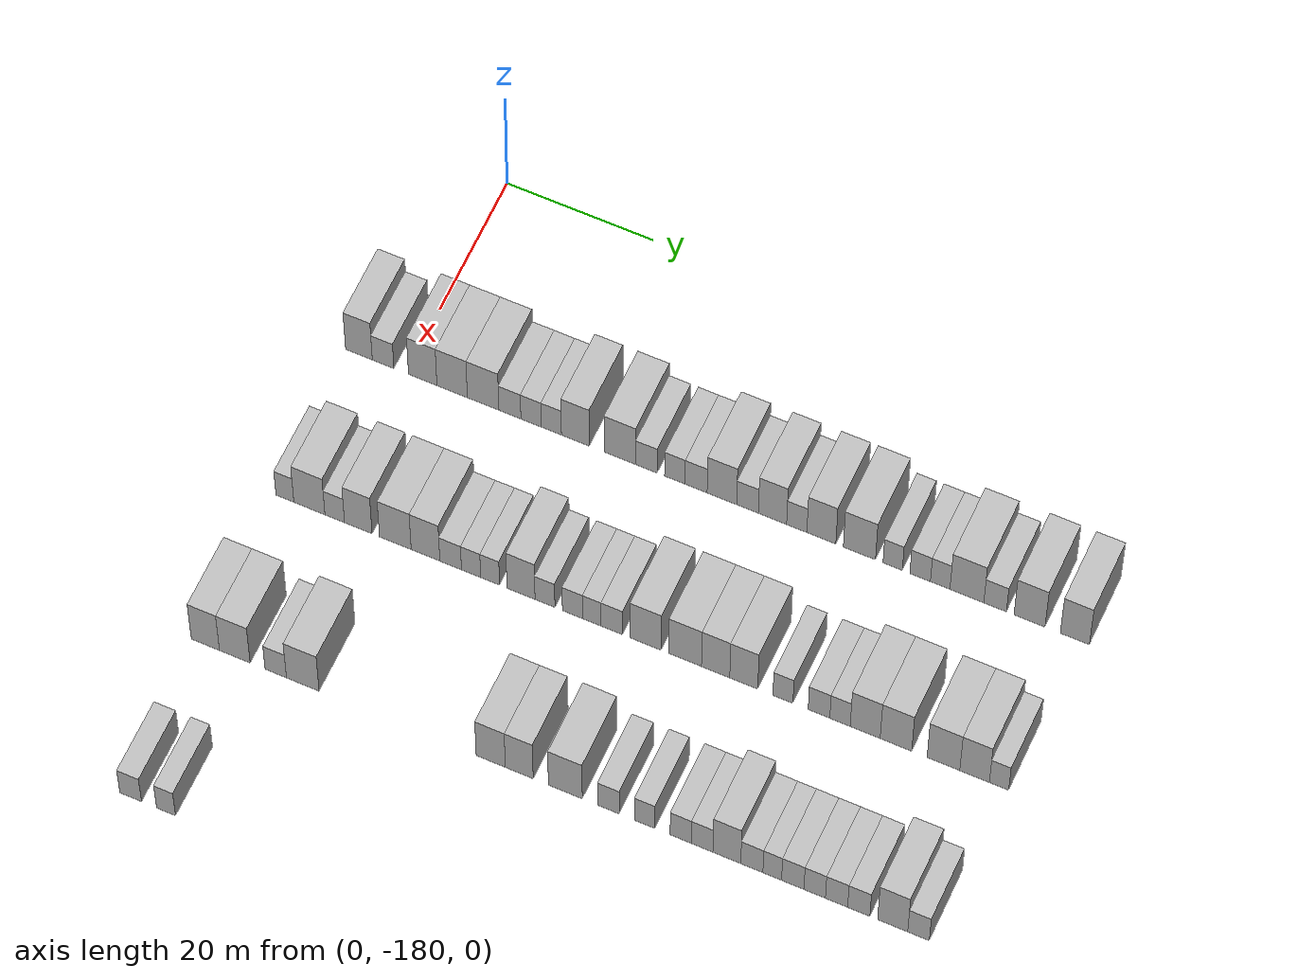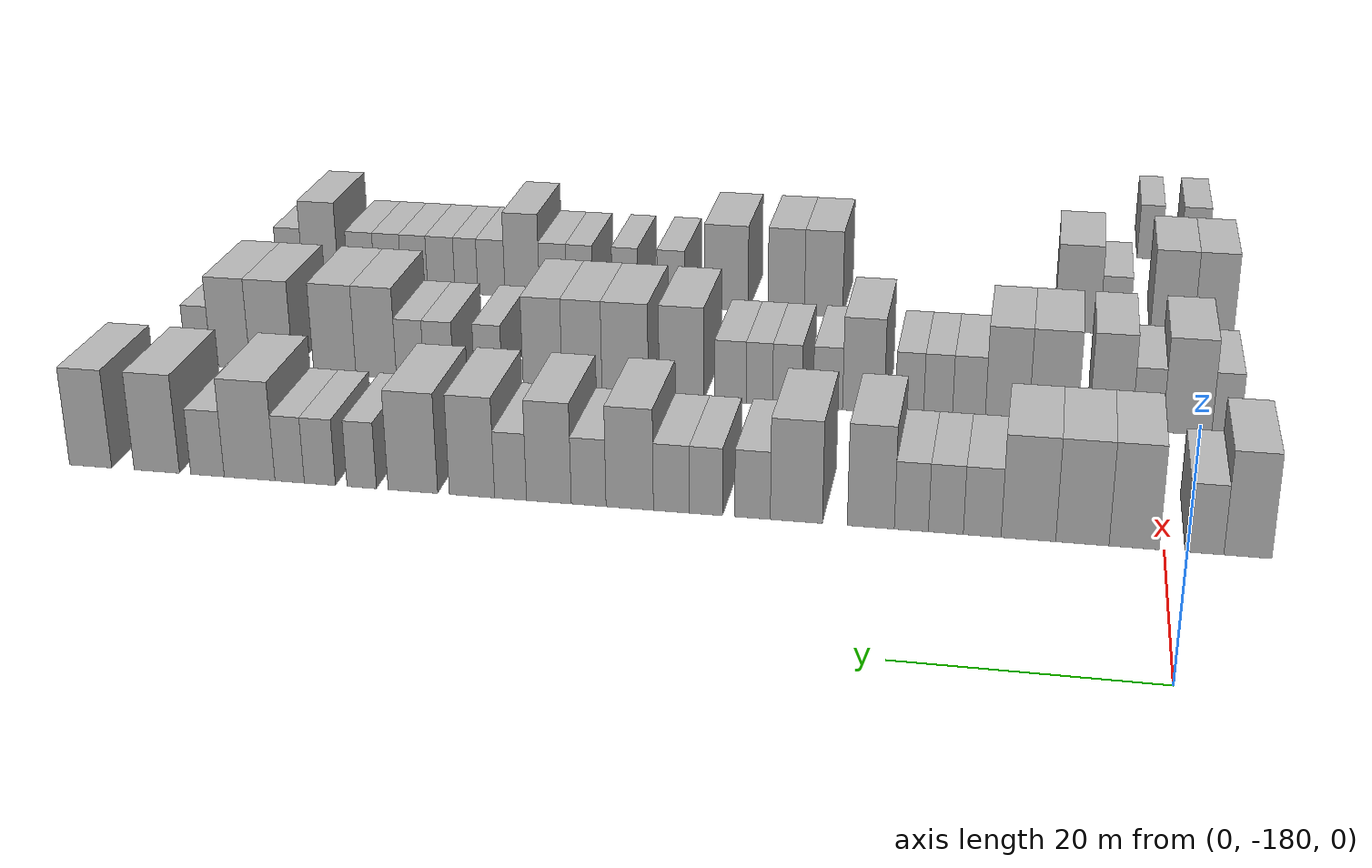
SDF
<sdf version="1.6">
 <world name="default">
  <model name="building_51">
   <static>1</static>
   <pose>25.0000 -186.3467 0 0.000000 0.000000 0.000000</pose>
   <link name="link">
    <pose>0 0 4.50 0 0 0</pose>
    <collision name="collision"><geometry><box><size>10.0000 3.6473 9.0000</size></box></geometry></collision>
    <visual name="visual">
     <cast_shadows>0</cast_shadows>
     <geometry><box><size>10.0000 3.6473 9.0000</size></box></geometry>
     <material>
      <script>
       <uri>model://HANNAS_wall/materials/scripts</uri>
       <uri>model://HANNAS_wall/materials/textures</uri>
       <name>vrc/HANNAS_wall</name>
      </script>
     </material>
    </visual>
   </link>
  </model>
  <model name="building_52">
   <static>1</static>
   <pose>25.0000 -183.0482 0 0.000000 0.000000 0.000000</pose>
   <link name="link">
    <pose>0 0 3.00 0 0 0</pose>
    <collision name="collision"><geometry><box><size>10.0000 2.9497 6.0000</size></box></geometry></collision>
    <visual name="visual">
     <cast_shadows>0</cast_shadows>
     <geometry><box><size>10.0000 2.9497 6.0000</size></box></geometry>
     <material>
      <script>
       <uri>model://HANNAS_wall/materials/scripts</uri>
       <uri>model://HANNAS_wall/materials/textures</uri>
       <name>vrc/HANNAS_wall</name>
      </script>
     </material>
    </visual>
   </link>
  </model>
  <model name="building_53">
   <static>1</static>
   <pose>25.0000 -177.6389 0 0.000000 0.000000 0.000000</pose>
   <link name="link">
    <pose>0 0 4.50 0 0 0</pose>
    <collision name="collision"><geometry><box><size>10.0000 3.8689 9.0000</size></box></geometry></collision>
    <visual name="visual">
     <cast_shadows>0</cast_shadows>
     <geometry><box><size>10.0000 3.8689 9.0000</size></box></geometry>
     <material>
      <script>
       <uri>model://HANNAS_wall/materials/scripts</uri>
       <uri>model://HANNAS_wall/materials/textures</uri>
       <name>vrc/HANNAS_wall</name>
      </script>
     </material>
    </visual>
   </link>
  </model>
  <model name="building_54">
   <static>1</static>
   <pose>25.0000 -173.6329 0 0.000000 0.000000 0.000000</pose>
   <link name="link">
    <pose>0 0 4.50 0 0 0</pose>
    <collision name="collision"><geometry><box><size>10.0000 4.1431 9.0000</size></box></geometry></collision>
    <visual name="visual">
     <cast_shadows>0</cast_shadows>
     <geometry><box><size>10.0000 4.1431 9.0000</size></box></geometry>
     <material>
      <script>
       <uri>model://HANNAS_wall/materials/scripts</uri>
       <uri>model://HANNAS_wall/materials/textures</uri>
       <name>vrc/HANNAS_wall</name>
      </script>
     </material>
    </visual>
   </link>
  </model>
  <model name="building_55">
   <static>1</static>
   <pose>25.0000 -169.4223 0 0.000000 0.000000 0.000000</pose>
   <link name="link">
    <pose>0 0 4.50 0 0 0</pose>
    <collision name="collision"><geometry><box><size>10.0000 4.2781 9.0000</size></box></geometry></collision>
    <visual name="visual">
     <cast_shadows>0</cast_shadows>
     <geometry><box><size>10.0000 4.2781 9.0000</size></box></geometry>
     <material>
      <script>
       <uri>model://HANNAS_wall/materials/scripts</uri>
       <uri>model://HANNAS_wall/materials/textures</uri>
       <name>vrc/HANNAS_wall</name>
      </script>
     </material>
    </visual>
   </link>
  </model>
  <model name="building_56">
   <static>1</static>
   <pose>25.0000 -165.7944 0 0.000000 0.000000 0.000000</pose>
   <link name="link">
    <pose>0 0 3.00 0 0 0</pose>
    <collision name="collision"><geometry><box><size>10.0000 2.9778 6.0000</size></box></geometry></collision>
    <visual name="visual">
     <cast_shadows>0</cast_shadows>
     <geometry><box><size>10.0000 2.9778 6.0000</size></box></geometry>
     <material>
      <script>
       <uri>model://HANNAS_wall/materials/scripts</uri>
       <uri>model://HANNAS_wall/materials/textures</uri>
       <name>vrc/HANNAS_wall</name>
      </script>
     </material>
    </visual>
   </link>
  </model>
  <model name="building_57">
   <static>1</static>
   <pose>25.0000 -162.9215 0 0.000000 0.000000 0.000000</pose>
   <link name="link">
    <pose>0 0 3.00 0 0 0</pose>
    <collision name="collision"><geometry><box><size>10.0000 2.7679 6.0000</size></box></geometry></collision>
    <visual name="visual">
     <cast_shadows>0</cast_shadows>
     <geometry><box><size>10.0000 2.7679 6.0000</size></box></geometry>
     <material>
      <script>
       <uri>model://HANNAS_wall/materials/scripts</uri>
       <uri>model://HANNAS_wall/materials/textures</uri>
       <name>vrc/HANNAS_wall</name>
      </script>
     </material>
    </visual>
   </link>
  </model>
  <model name="building_58">
   <static>1</static>
   <pose>25.0000 -160.1799 0 0.000000 0.000000 0.000000</pose>
   <link name="link">
    <pose>0 0 3.00 0 0 0</pose>
    <collision name="collision"><geometry><box><size>10.0000 2.7152 6.0000</size></box></geometry></collision>
    <visual name="visual">
     <cast_shadows>0</cast_shadows>
     <geometry><box><size>10.0000 2.7152 6.0000</size></box></geometry>
     <material>
      <script>
       <uri>model://HANNAS_wall/materials/scripts</uri>
       <uri>model://HANNAS_wall/materials/textures</uri>
       <name>vrc/HANNAS_wall</name>
      </script>
     </material>
    </visual>
   </link>
  </model>
  <model name="building_59">
   <static>1</static>
   <pose>25.0000 -156.9391 0 0.000000 0.000000 0.000000</pose>
   <link name="link">
    <pose>0 0 4.50 0 0 0</pose>
    <collision name="collision"><geometry><box><size>10.0000 3.7665 9.0000</size></box></geometry></collision>
    <visual name="visual">
     <cast_shadows>0</cast_shadows>
     <geometry><box><size>10.0000 3.7665 9.0000</size></box></geometry>
     <material>
      <script>
       <uri>model://HANNAS_wall/materials/scripts</uri>
       <uri>model://HANNAS_wall/materials/textures</uri>
       <name>vrc/HANNAS_wall</name>
      </script>
     </material>
    </visual>
   </link>
  </model>
  <model name="building_60">
   <static>1</static>
   <pose>25.0000 -150.9437 0 0.000000 0.000000 0.000000</pose>
   <link name="link">
    <pose>0 0 4.50 0 0 0</pose>
    <collision name="collision"><geometry><box><size>10.0000 4.2244 9.0000</size></box></geometry></collision>
    <visual name="visual">
     <cast_shadows>0</cast_shadows>
     <geometry><box><size>10.0000 4.2244 9.0000</size></box></geometry>
     <material>
      <script>
       <uri>model://HANNAS_wall/materials/scripts</uri>
       <uri>model://HANNAS_wall/materials/textures</uri>
       <name>vrc/HANNAS_wall</name>
      </script>
     </material>
    </visual>
   </link>
  </model>
  <model name="building_61">
   <static>1</static>
   <pose>25.0000 -147.3868 0 0.000000 0.000000 0.000000</pose>
   <link name="link">
    <pose>0 0 3.00 0 0 0</pose>
    <collision name="collision"><geometry><box><size>10.0000 2.8894 6.0000</size></box></geometry></collision>
    <visual name="visual">
     <cast_shadows>0</cast_shadows>
     <geometry><box><size>10.0000 2.8894 6.0000</size></box></geometry>
     <material>
      <script>
       <uri>model://HANNAS_wall/materials/scripts</uri>
       <uri>model://HANNAS_wall/materials/textures</uri>
       <name>vrc/HANNAS_wall</name>
      </script>
     </material>
    </visual>
   </link>
  </model>
  <model name="building_62">
   <static>1</static>
   <pose>25.0000 -143.5792 0 0.000000 0.000000 0.000000</pose>
   <link name="link">
    <pose>0 0 3.00 0 0 0</pose>
    <collision name="collision"><geometry><box><size>10.0000 2.7258 6.0000</size></box></geometry></collision>
    <visual name="visual">
     <cast_shadows>0</cast_shadows>
     <geometry><box><size>10.0000 2.7258 6.0000</size></box></geometry>
     <material>
      <script>
       <uri>model://HANNAS_wall/materials/scripts</uri>
       <uri>model://HANNAS_wall/materials/textures</uri>
       <name>vrc/HANNAS_wall</name>
      </script>
     </material>
    </visual>
   </link>
  </model>
  <model name="building_63">
   <static>1</static>
   <pose>25.0000 -140.7304 0 0.000000 0.000000 0.000000</pose>
   <link name="link">
    <pose>0 0 3.00 0 0 0</pose>
    <collision name="collision"><geometry><box><size>10.0000 2.9717 6.0000</size></box></geometry></collision>
    <visual name="visual">
     <cast_shadows>0</cast_shadows>
     <geometry><box><size>10.0000 2.9717 6.0000</size></box></geometry>
     <material>
      <script>
       <uri>model://HANNAS_wall/materials/scripts</uri>
       <uri>model://HANNAS_wall/materials/textures</uri>
       <name>vrc/HANNAS_wall</name>
      </script>
     </material>
    </visual>
   </link>
  </model>
  <model name="building_64">
   <static>1</static>
   <pose>25.0000 -137.2774 0 0.000000 0.000000 0.000000</pose>
   <link name="link">
    <pose>0 0 4.50 0 0 0</pose>
    <collision name="collision"><geometry><box><size>10.0000 3.9343 9.0000</size></box></geometry></collision>
    <visual name="visual">
     <cast_shadows>0</cast_shadows>
     <geometry><box><size>10.0000 3.9343 9.0000</size></box></geometry>
     <material>
      <script>
       <uri>model://HANNAS_wall/materials/scripts</uri>
       <uri>model://HANNAS_wall/materials/textures</uri>
       <name>vrc/HANNAS_wall</name>
      </script>
     </material>
    </visual>
   </link>
  </model>
  <model name="building_65">
   <static>1</static>
   <pose>25.0000 -133.8608 0 0.000000 0.000000 0.000000</pose>
   <link name="link">
    <pose>0 0 3.00 0 0 0</pose>
    <collision name="collision"><geometry><box><size>10.0000 2.8989 6.0000</size></box></geometry></collision>
    <visual name="visual">
     <cast_shadows>0</cast_shadows>
     <geometry><box><size>10.0000 2.8989 6.0000</size></box></geometry>
     <material>
      <script>
       <uri>model://HANNAS_wall/materials/scripts</uri>
       <uri>model://HANNAS_wall/materials/textures</uri>
       <name>vrc/HANNAS_wall</name>
      </script>
     </material>
    </visual>
   </link>
  </model>
  <model name="building_66">
   <static>1</static>
   <pose>25.0000 -130.5296 0 0.000000 0.000000 0.000000</pose>
   <link name="link">
    <pose>0 0 4.50 0 0 0</pose>
    <collision name="collision"><geometry><box><size>10.0000 3.7636 9.0000</size></box></geometry></collision>
    <visual name="visual">
     <cast_shadows>0</cast_shadows>
     <geometry><box><size>10.0000 3.7636 9.0000</size></box></geometry>
     <material>
      <script>
       <uri>model://HANNAS_wall/materials/scripts</uri>
       <uri>model://HANNAS_wall/materials/textures</uri>
       <name>vrc/HANNAS_wall</name>
      </script>
     </material>
    </visual>
   </link>
  </model>
  <model name="building_67">
   <static>1</static>
   <pose>25.0000 -127.2999 0 0.000000 0.000000 0.000000</pose>
   <link name="link">
    <pose>0 0 3.00 0 0 0</pose>
    <collision name="collision"><geometry><box><size>10.0000 2.6956 6.0000</size></box></geometry></collision>
    <visual name="visual">
     <cast_shadows>0</cast_shadows>
     <geometry><box><size>10.0000 2.6956 6.0000</size></box></geometry>
     <material>
      <script>
       <uri>model://HANNAS_wall/materials/scripts</uri>
       <uri>model://HANNAS_wall/materials/textures</uri>
       <name>vrc/HANNAS_wall</name>
      </script>
     </material>
    </visual>
   </link>
  </model>
  <model name="building_68">
   <static>1</static>
   <pose>25.0000 -124.0299 0 0.000000 0.000000 0.000000</pose>
   <link name="link">
    <pose>0 0 4.50 0 0 0</pose>
    <collision name="collision"><geometry><box><size>10.0000 3.8445 9.0000</size></box></geometry></collision>
    <visual name="visual">
     <cast_shadows>0</cast_shadows>
     <geometry><box><size>10.0000 3.8445 9.0000</size></box></geometry>
     <material>
      <script>
       <uri>model://HANNAS_wall/materials/scripts</uri>
       <uri>model://HANNAS_wall/materials/textures</uri>
       <name>vrc/HANNAS_wall</name>
      </script>
     </material>
    </visual>
   </link>
  </model>
  <model name="building_69">
   <static>1</static>
   <pose>25.0000 -118.9810 0 0.000000 0.000000 0.000000</pose>
   <link name="link">
    <pose>0 0 4.50 0 0 0</pose>
    <collision name="collision"><geometry><box><size>10.0000 4.2533 9.0000</size></box></geometry></collision>
    <visual name="visual">
     <cast_shadows>0</cast_shadows>
     <geometry><box><size>10.0000 4.2533 9.0000</size></box></geometry>
     <material>
      <script>
       <uri>model://HANNAS_wall/materials/scripts</uri>
       <uri>model://HANNAS_wall/materials/textures</uri>
       <name>vrc/HANNAS_wall</name>
      </script>
     </material>
    </visual>
   </link>
  </model>
  <model name="building_70">
   <static>1</static>
   <pose>25.0000 -114.5784 0 0.000000 0.000000 0.000000</pose>
   <link name="link">
    <pose>0 0 3.00 0 0 0</pose>
    <collision name="collision"><geometry><box><size>10.0000 2.5518 6.0000</size></box></geometry></collision>
    <visual name="visual">
     <cast_shadows>0</cast_shadows>
     <geometry><box><size>10.0000 2.5518 6.0000</size></box></geometry>
     <material>
      <script>
       <uri>model://HANNAS_wall/materials/scripts</uri>
       <uri>model://HANNAS_wall/materials/textures</uri>
       <name>vrc/HANNAS_wall</name>
      </script>
     </material>
    </visual>
   </link>
  </model>
  <model name="building_71">
   <static>1</static>
   <pose>25.0000 -110.9483 0 0.000000 0.000000 0.000000</pose>
   <link name="link">
    <pose>0 0 3.00 0 0 0</pose>
    <collision name="collision"><geometry><box><size>10.0000 2.7084 6.0000</size></box></geometry></collision>
    <visual name="visual">
     <cast_shadows>0</cast_shadows>
     <geometry><box><size>10.0000 2.7084 6.0000</size></box></geometry>
     <material>
      <script>
       <uri>model://HANNAS_wall/materials/scripts</uri>
       <uri>model://HANNAS_wall/materials/textures</uri>
       <name>vrc/HANNAS_wall</name>
      </script>
     </material>
    </visual>
   </link>
  </model>
  <model name="building_72">
   <static>1</static>
   <pose>25.0000 -108.3103 0 0.000000 0.000000 0.000000</pose>
   <link name="link">
    <pose>0 0 3.00 0 0 0</pose>
    <collision name="collision"><geometry><box><size>10.0000 2.5677 6.0000</size></box></geometry></collision>
    <visual name="visual">
     <cast_shadows>0</cast_shadows>
     <geometry><box><size>10.0000 2.5677 6.0000</size></box></geometry>
     <material>
      <script>
       <uri>model://HANNAS_wall/materials/scripts</uri>
       <uri>model://HANNAS_wall/materials/textures</uri>
       <name>vrc/HANNAS_wall</name>
      </script>
     </material>
    </visual>
   </link>
  </model>
  <model name="building_73">
   <static>1</static>
   <pose>25.0000 -104.7970 0 0.000000 0.000000 0.000000</pose>
   <link name="link">
    <pose>0 0 4.50 0 0 0</pose>
    <collision name="collision"><geometry><box><size>10.0000 4.4589 9.0000</size></box></geometry></collision>
    <visual name="visual">
     <cast_shadows>0</cast_shadows>
     <geometry><box><size>10.0000 4.4589 9.0000</size></box></geometry>
     <material>
      <script>
       <uri>model://HANNAS_wall/materials/scripts</uri>
       <uri>model://HANNAS_wall/materials/textures</uri>
       <name>vrc/HANNAS_wall</name>
      </script>
     </material>
    </visual>
   </link>
  </model>
  <model name="building_74">
   <static>1</static>
   <pose>25.0000 -101.0867 0 0.000000 0.000000 0.000000</pose>
   <link name="link">
    <pose>0 0 3.00 0 0 0</pose>
    <collision name="collision"><geometry><box><size>10.0000 2.9616 6.0000</size></box></geometry></collision>
    <visual name="visual">
     <cast_shadows>0</cast_shadows>
     <geometry><box><size>10.0000 2.9616 6.0000</size></box></geometry>
     <material>
      <script>
       <uri>model://HANNAS_wall/materials/scripts</uri>
       <uri>model://HANNAS_wall/materials/textures</uri>
       <name>vrc/HANNAS_wall</name>
      </script>
     </material>
    </visual>
   </link>
  </model>
  <model name="building_75">
   <static>1</static>
   <pose>25.0000 -96.5791 0 0.000000 0.000000 0.000000</pose>
   <link name="link">
    <pose>0 0 4.50 0 0 0</pose>
    <collision name="collision"><geometry><box><size>10.0000 4.0536 9.0000</size></box></geometry></collision>
    <visual name="visual">
     <cast_shadows>0</cast_shadows>
     <geometry><box><size>10.0000 4.0536 9.0000</size></box></geometry>
     <material>
      <script>
       <uri>model://HANNAS_wall/materials/scripts</uri>
       <uri>model://HANNAS_wall/materials/textures</uri>
       <name>vrc/HANNAS_wall</name>
      </script>
     </material>
    </visual>
   </link>
  </model>
  <model name="building_76">
   <static>1</static>
   <pose>25.0000 -90.6534 0 0.000000 0.000000 0.000000</pose>
   <link name="link">
    <pose>0 0 4.50 0 0 0</pose>
    <collision name="collision"><geometry><box><size>10.0000 3.7979 9.0000</size></box></geometry></collision>
    <visual name="visual">
     <cast_shadows>0</cast_shadows>
     <geometry><box><size>10.0000 3.7979 9.0000</size></box></geometry>
     <material>
      <script>
       <uri>model://HANNAS_wall/materials/scripts</uri>
       <uri>model://HANNAS_wall/materials/textures</uri>
       <name>vrc/HANNAS_wall</name>
      </script>
     </material>
    </visual>
   </link>
  </model>
  <model name="building_247">
   <static>1</static>
   <pose>47.0000 -185.8742 0 0.000000 0.000000 0.000000</pose>
   <link name="link">
    <pose>0 0 3.00 0 0 0</pose>
    <collision name="collision"><geometry><box><size>10.0000 2.4196 6.0000</size></box></geometry></collision>
    <visual name="visual">
     <cast_shadows>0</cast_shadows>
     <geometry><box><size>10.0000 2.4196 6.0000</size></box></geometry>
     <material>
      <script>
       <uri>model://HANNAS_wall/materials/scripts</uri>
       <uri>model://HANNAS_wall/materials/textures</uri>
       <name>vrc/HANNAS_wall</name>
      </script>
     </material>
    </visual>
   </link>
  </model>
  <model name="building_248">
   <static>1</static>
   <pose>47.0000 -182.5628 0 0.000000 0.000000 0.000000</pose>
   <link name="link">
    <pose>0 0 4.50 0 0 0</pose>
    <collision name="collision"><geometry><box><size>10.0000 4.2032 9.0000</size></box></geometry></collision>
    <visual name="visual">
     <cast_shadows>0</cast_shadows>
     <geometry><box><size>10.0000 4.2032 9.0000</size></box></geometry>
     <material>
      <script>
       <uri>model://HANNAS_wall/materials/scripts</uri>
       <uri>model://HANNAS_wall/materials/textures</uri>
       <name>vrc/HANNAS_wall</name>
      </script>
     </material>
    </visual>
   </link>
  </model>
  <model name="building_249">
   <static>1</static>
   <pose>47.0000 -179.1357 0 0.000000 0.000000 0.000000</pose>
   <link name="link">
    <pose>0 0 3.00 0 0 0</pose>
    <collision name="collision"><geometry><box><size>10.0000 2.6509 6.0000</size></box></geometry></collision>
    <visual name="visual">
     <cast_shadows>0</cast_shadows>
     <geometry><box><size>10.0000 2.6509 6.0000</size></box></geometry>
     <material>
      <script>
       <uri>model://HANNAS_wall/materials/scripts</uri>
       <uri>model://HANNAS_wall/materials/textures</uri>
       <name>vrc/HANNAS_wall</name>
      </script>
     </material>
    </visual>
   </link>
  </model>
  <model name="building_250">
   <static>1</static>
   <pose>47.0000 -175.9497 0 0.000000 0.000000 0.000000</pose>
   <link name="link">
    <pose>0 0 4.50 0 0 0</pose>
    <collision name="collision"><geometry><box><size>10.0000 3.7211 9.0000</size></box></geometry></collision>
    <visual name="visual">
     <cast_shadows>0</cast_shadows>
     <geometry><box><size>10.0000 3.7211 9.0000</size></box></geometry>
     <material>
      <script>
       <uri>model://HANNAS_wall/materials/scripts</uri>
       <uri>model://HANNAS_wall/materials/textures</uri>
       <name>vrc/HANNAS_wall</name>
      </script>
     </material>
    </visual>
   </link>
  </model>
  <model name="building_251">
   <static>1</static>
   <pose>47.0000 -170.9614 0 0.000000 0.000000 0.000000</pose>
   <link name="link">
    <pose>0 0 4.50 0 0 0</pose>
    <collision name="collision"><geometry><box><size>10.0000 4.2555 9.0000</size></box></geometry></collision>
    <visual name="visual">
     <cast_shadows>0</cast_shadows>
     <geometry><box><size>10.0000 4.2555 9.0000</size></box></geometry>
     <material>
      <script>
       <uri>model://HANNAS_wall/materials/scripts</uri>
       <uri>model://HANNAS_wall/materials/textures</uri>
       <name>vrc/HANNAS_wall</name>
      </script>
     </material>
    </visual>
   </link>
  </model>
  <model name="building_252">
   <static>1</static>
   <pose>47.0000 -166.9085 0 0.000000 0.000000 0.000000</pose>
   <link name="link">
    <pose>0 0 4.50 0 0 0</pose>
    <collision name="collision"><geometry><box><size>10.0000 3.8505 9.0000</size></box></geometry></collision>
    <visual name="visual">
     <cast_shadows>0</cast_shadows>
     <geometry><box><size>10.0000 3.8505 9.0000</size></box></geometry>
     <material>
      <script>
       <uri>model://HANNAS_wall/materials/scripts</uri>
       <uri>model://HANNAS_wall/materials/textures</uri>
       <name>vrc/HANNAS_wall</name>
      </script>
     </material>
    </visual>
   </link>
  </model>
  <model name="building_253">
   <static>1</static>
   <pose>47.0000 -163.5341 0 0.000000 0.000000 0.000000</pose>
   <link name="link">
    <pose>0 0 3.00 0 0 0</pose>
    <collision name="collision"><geometry><box><size>10.0000 2.8982 6.0000</size></box></geometry></collision>
    <visual name="visual">
     <cast_shadows>0</cast_shadows>
     <geometry><box><size>10.0000 2.8982 6.0000</size></box></geometry>
     <material>
      <script>
       <uri>model://HANNAS_wall/materials/scripts</uri>
       <uri>model://HANNAS_wall/materials/textures</uri>
       <name>vrc/HANNAS_wall</name>
      </script>
     </material>
    </visual>
   </link>
  </model>
  <model name="building_254">
   <static>1</static>
   <pose>47.0000 -160.7987 0 0.000000 0.000000 0.000000</pose>
   <link name="link">
    <pose>0 0 3.00 0 0 0</pose>
    <collision name="collision"><geometry><box><size>10.0000 2.5726 6.0000</size></box></geometry></collision>
    <visual name="visual">
     <cast_shadows>0</cast_shadows>
     <geometry><box><size>10.0000 2.5726 6.0000</size></box></geometry>
     <material>
      <script>
       <uri>model://HANNAS_wall/materials/scripts</uri>
       <uri>model://HANNAS_wall/materials/textures</uri>
       <name>vrc/HANNAS_wall</name>
      </script>
     </material>
    </visual>
   </link>
  </model>
  <model name="building_255">
   <static>1</static>
   <pose>47.0000 -158.2508 0 0.000000 0.000000 0.000000</pose>
   <link name="link">
    <pose>0 0 3.00 0 0 0</pose>
    <collision name="collision"><geometry><box><size>10.0000 2.5232 6.0000</size></box></geometry></collision>
    <visual name="visual">
     <cast_shadows>0</cast_shadows>
     <geometry><box><size>10.0000 2.5232 6.0000</size></box></geometry>
     <material>
      <script>
       <uri>model://HANNAS_wall/materials/scripts</uri>
       <uri>model://HANNAS_wall/materials/textures</uri>
       <name>vrc/HANNAS_wall</name>
      </script>
     </material>
    </visual>
   </link>
  </model>
  <model name="building_256">
   <static>1</static>
   <pose>47.0000 -154.1206 0 0.000000 0.000000 0.000000</pose>
   <link name="link">
    <pose>0 0 4.50 0 0 0</pose>
    <collision name="collision"><geometry><box><size>10.0000 3.7370 9.0000</size></box></geometry></collision>
    <visual name="visual">
     <cast_shadows>0</cast_shadows>
     <geometry><box><size>10.0000 3.7370 9.0000</size></box></geometry>
     <material>
      <script>
       <uri>model://HANNAS_wall/materials/scripts</uri>
       <uri>model://HANNAS_wall/materials/textures</uri>
       <name>vrc/HANNAS_wall</name>
      </script>
     </material>
    </visual>
   </link>
  </model>
  <model name="building_257">
   <static>1</static>
   <pose>47.0000 -150.9281 0 0.000000 0.000000 0.000000</pose>
   <link name="link">
    <pose>0 0 3.00 0 0 0</pose>
    <collision name="collision"><geometry><box><size>10.0000 2.6481 6.0000</size></box></geometry></collision>
    <visual name="visual">
     <cast_shadows>0</cast_shadows>
     <geometry><box><size>10.0000 2.6481 6.0000</size></box></geometry>
     <material>
      <script>
       <uri>model://HANNAS_wall/materials/scripts</uri>
       <uri>model://HANNAS_wall/materials/textures</uri>
       <name>vrc/HANNAS_wall</name>
      </script>
     </material>
    </visual>
   </link>
  </model>
  <model name="building_258">
   <static>1</static>
   <pose>47.0000 -147.2632 0 0.000000 0.000000 0.000000</pose>
   <link name="link">
    <pose>0 0 3.00 0 0 0</pose>
    <collision name="collision"><geometry><box><size>10.0000 2.6816 6.0000</size></box></geometry></collision>
    <visual name="visual">
     <cast_shadows>0</cast_shadows>
     <geometry><box><size>10.0000 2.6816 6.0000</size></box></geometry>
     <material>
      <script>
       <uri>model://HANNAS_wall/materials/scripts</uri>
       <uri>model://HANNAS_wall/materials/textures</uri>
       <name>vrc/HANNAS_wall</name>
      </script>
     </material>
    </visual>
   </link>
  </model>
  <model name="building_259">
   <static>1</static>
   <pose>47.0000 -144.7095 0 0.000000 0.000000 0.000000</pose>
   <link name="link">
    <pose>0 0 3.00 0 0 0</pose>
    <collision name="collision"><geometry><box><size>10.0000 2.4258 6.0000</size></box></geometry></collision>
    <visual name="visual">
     <cast_shadows>0</cast_shadows>
     <geometry><box><size>10.0000 2.4258 6.0000</size></box></geometry>
     <material>
      <script>
       <uri>model://HANNAS_wall/materials/scripts</uri>
       <uri>model://HANNAS_wall/materials/textures</uri>
       <name>vrc/HANNAS_wall</name>
      </script>
     </material>
    </visual>
   </link>
  </model>
  <model name="building_260">
   <static>1</static>
   <pose>47.0000 -142.0629 0 0.000000 0.000000 0.000000</pose>
   <link name="link">
    <pose>0 0 3.00 0 0 0</pose>
    <collision name="collision"><geometry><box><size>10.0000 2.8675 6.0000</size></box></geometry></collision>
    <visual name="visual">
     <cast_shadows>0</cast_shadows>
     <geometry><box><size>10.0000 2.8675 6.0000</size></box></geometry>
     <material>
      <script>
       <uri>model://HANNAS_wall/materials/scripts</uri>
       <uri>model://HANNAS_wall/materials/textures</uri>
       <name>vrc/HANNAS_wall</name>
      </script>
     </material>
    </visual>
   </link>
  </model>
  <model name="building_261">
   <static>1</static>
   <pose>47.0000 -137.5659 0 0.000000 0.000000 0.000000</pose>
   <link name="link">
    <pose>0 0 4.50 0 0 0</pose>
    <collision name="collision"><geometry><box><size>10.0000 4.1264 9.0000</size></box></geometry></collision>
    <visual name="visual">
     <cast_shadows>0</cast_shadows>
     <geometry><box><size>10.0000 4.1264 9.0000</size></box></geometry>
     <material>
      <script>
       <uri>model://HANNAS_wall/materials/scripts</uri>
       <uri>model://HANNAS_wall/materials/textures</uri>
       <name>vrc/HANNAS_wall</name>
      </script>
     </material>
    </visual>
   </link>
  </model>
  <model name="building_262">
   <static>1</static>
   <pose>47.0000 -132.3432 0 0.000000 0.000000 0.000000</pose>
   <link name="link">
    <pose>0 0 4.50 0 0 0</pose>
    <collision name="collision"><geometry><box><size>10.0000 4.3190 9.0000</size></box></geometry></collision>
    <visual name="visual">
     <cast_shadows>0</cast_shadows>
     <geometry><box><size>10.0000 4.3190 9.0000</size></box></geometry>
     <material>
      <script>
       <uri>model://HANNAS_wall/materials/scripts</uri>
       <uri>model://HANNAS_wall/materials/textures</uri>
       <name>vrc/HANNAS_wall</name>
      </script>
     </material>
    </visual>
   </link>
  </model>
  <model name="building_263">
   <static>1</static>
   <pose>47.0000 -128.3220 0 0.000000 0.000000 0.000000</pose>
   <link name="link">
    <pose>0 0 4.50 0 0 0</pose>
    <collision name="collision"><geometry><box><size>10.0000 3.7235 9.0000</size></box></geometry></collision>
    <visual name="visual">
     <cast_shadows>0</cast_shadows>
     <geometry><box><size>10.0000 3.7235 9.0000</size></box></geometry>
     <material>
      <script>
       <uri>model://HANNAS_wall/materials/scripts</uri>
       <uri>model://HANNAS_wall/materials/textures</uri>
       <name>vrc/HANNAS_wall</name>
      </script>
     </material>
    </visual>
   </link>
  </model>
  <model name="building_264">
   <static>1</static>
   <pose>47.0000 -124.6211 0 0.000000 0.000000 0.000000</pose>
   <link name="link">
    <pose>0 0 4.50 0 0 0</pose>
    <collision name="collision"><geometry><box><size>10.0000 3.6783 9.0000</size></box></geometry></collision>
    <visual name="visual">
     <cast_shadows>0</cast_shadows>
     <geometry><box><size>10.0000 3.6783 9.0000</size></box></geometry>
     <material>
      <script>
       <uri>model://HANNAS_wall/materials/scripts</uri>
       <uri>model://HANNAS_wall/materials/textures</uri>
       <name>vrc/HANNAS_wall</name>
      </script>
     </material>
    </visual>
   </link>
  </model>
  <model name="building_265">
   <static>1</static>
   <pose>47.0000 -119.4711 0 0.000000 0.000000 0.000000</pose>
   <link name="link">
    <pose>0 0 3.00 0 0 0</pose>
    <collision name="collision"><geometry><box><size>10.0000 2.6219 6.0000</size></box></geometry></collision>
    <visual name="visual">
     <cast_shadows>0</cast_shadows>
     <geometry><box><size>10.0000 2.6219 6.0000</size></box></geometry>
     <material>
      <script>
       <uri>model://HANNAS_wall/materials/scripts</uri>
       <uri>model://HANNAS_wall/materials/textures</uri>
       <name>vrc/HANNAS_wall</name>
      </script>
     </material>
    </visual>
   </link>
  </model>
  <model name="building_266">
   <static>1</static>
   <pose>47.0000 -114.7470 0 0.000000 0.000000 0.000000</pose>
   <link name="link">
    <pose>0 0 3.00 0 0 0</pose>
    <collision name="collision"><geometry><box><size>10.0000 2.8262 6.0000</size></box></geometry></collision>
    <visual name="visual">
     <cast_shadows>0</cast_shadows>
     <geometry><box><size>10.0000 2.8262 6.0000</size></box></geometry>
     <material>
      <script>
       <uri>model://HANNAS_wall/materials/scripts</uri>
       <uri>model://HANNAS_wall/materials/textures</uri>
       <name>vrc/HANNAS_wall</name>
      </script>
     </material>
    </visual>
   </link>
  </model>
  <model name="building_267">
   <static>1</static>
   <pose>47.0000 -112.0012 0 0.000000 0.000000 0.000000</pose>
   <link name="link">
    <pose>0 0 3.00 0 0 0</pose>
    <collision name="collision"><geometry><box><size>10.0000 2.6655 6.0000</size></box></geometry></collision>
    <visual name="visual">
     <cast_shadows>0</cast_shadows>
     <geometry><box><size>10.0000 2.6655 6.0000</size></box></geometry>
     <material>
      <script>
       <uri>model://HANNAS_wall/materials/scripts</uri>
       <uri>model://HANNAS_wall/materials/textures</uri>
       <name>vrc/HANNAS_wall</name>
      </script>
     </material>
    </visual>
   </link>
  </model>
  <model name="building_268">
   <static>1</static>
   <pose>47.0000 -108.7131 0 0.000000 0.000000 0.000000</pose>
   <link name="link">
    <pose>0 0 4.50 0 0 0</pose>
    <collision name="collision"><geometry><box><size>10.0000 3.9105 9.0000</size></box></geometry></collision>
    <visual name="visual">
     <cast_shadows>0</cast_shadows>
     <geometry><box><size>10.0000 3.9105 9.0000</size></box></geometry>
     <material>
      <script>
       <uri>model://HANNAS_wall/materials/scripts</uri>
       <uri>model://HANNAS_wall/materials/textures</uri>
       <name>vrc/HANNAS_wall</name>
      </script>
     </material>
    </visual>
   </link>
  </model>
  <model name="building_269">
   <static>1</static>
   <pose>47.0000 -104.7023 0 0.000000 0.000000 0.000000</pose>
   <link name="link">
    <pose>0 0 4.50 0 0 0</pose>
    <collision name="collision"><geometry><box><size>10.0000 4.1111 9.0000</size></box></geometry></collision>
    <visual name="visual">
     <cast_shadows>0</cast_shadows>
     <geometry><box><size>10.0000 4.1111 9.0000</size></box></geometry>
     <material>
      <script>
       <uri>model://HANNAS_wall/materials/scripts</uri>
       <uri>model://HANNAS_wall/materials/textures</uri>
       <name>vrc/HANNAS_wall</name>
      </script>
     </material>
    </visual>
   </link>
  </model>
  <model name="building_270">
   <static>1</static>
   <pose>47.0000 -98.5285 0 0.000000 0.000000 0.000000</pose>
   <link name="link">
    <pose>0 0 4.50 0 0 0</pose>
    <collision name="collision"><geometry><box><size>10.0000 4.2365 9.0000</size></box></geometry></collision>
    <visual name="visual">
     <cast_shadows>0</cast_shadows>
     <geometry><box><size>10.0000 4.2365 9.0000</size></box></geometry>
     <material>
      <script>
       <uri>model://HANNAS_wall/materials/scripts</uri>
       <uri>model://HANNAS_wall/materials/textures</uri>
       <name>vrc/HANNAS_wall</name>
      </script>
     </material>
    </visual>
   </link>
  </model>
  <model name="building_271">
   <static>1</static>
   <pose>47.0000 -94.4938 0 0.000000 0.000000 0.000000</pose>
   <link name="link">
    <pose>0 0 4.50 0 0 0</pose>
    <collision name="collision"><geometry><box><size>10.0000 3.8328 9.0000</size></box></geometry></collision>
    <visual name="visual">
     <cast_shadows>0</cast_shadows>
     <geometry><box><size>10.0000 3.8328 9.0000</size></box></geometry>
     <material>
      <script>
       <uri>model://HANNAS_wall/materials/scripts</uri>
       <uri>model://HANNAS_wall/materials/textures</uri>
       <name>vrc/HANNAS_wall</name>
      </script>
     </material>
    </visual>
   </link>
  </model>
  <model name="building_272">
   <static>1</static>
   <pose>47.0000 -91.3281 0 0.000000 0.000000 0.000000</pose>
   <link name="link">
    <pose>0 0 3.00 0 0 0</pose>
    <collision name="collision"><geometry><box><size>10.0000 2.4986 6.0000</size></box></geometry></collision>
    <visual name="visual">
     <cast_shadows>0</cast_shadows>
     <geometry><box><size>10.0000 2.4986 6.0000</size></box></geometry>
     <material>
      <script>
       <uri>model://HANNAS_wall/materials/scripts</uri>
       <uri>model://HANNAS_wall/materials/textures</uri>
       <name>vrc/HANNAS_wall</name>
      </script>
     </material>
    </visual>
   </link>
  </model>
  <model name="building_440">
   <static>1</static>
   <pose>69.0000 -185.8932 0 0.000000 0.000000 0.000000</pose>
   <link name="link">
    <pose>0 0 4.50 0 0 0</pose>
    <collision name="collision"><geometry><box><size>10.0000 3.7745 9.0000</size></box></geometry></collision>
    <visual name="visual">
     <cast_shadows>0</cast_shadows>
     <geometry><box><size>10.0000 3.7745 9.0000</size></box></geometry>
     <material>
      <script>
       <uri>model://HANNAS_wall/materials/scripts</uri>
       <uri>model://HANNAS_wall/materials/textures</uri>
       <name>vrc/HANNAS_wall</name>
      </script>
     </material>
    </visual>
   </link>
  </model>
  <model name="building_441">
   <static>1</static>
   <pose>69.0000 -181.9480 0 0.000000 0.000000 0.000000</pose>
   <link name="link">
    <pose>0 0 4.50 0 0 0</pose>
    <collision name="collision"><geometry><box><size>10.0000 4.1159 9.0000</size></box></geometry></collision>
    <visual name="visual">
     <cast_shadows>0</cast_shadows>
     <geometry><box><size>10.0000 4.1159 9.0000</size></box></geometry>
     <material>
      <script>
       <uri>model://HANNAS_wall/materials/scripts</uri>
       <uri>model://HANNAS_wall/materials/textures</uri>
       <name>vrc/HANNAS_wall</name>
      </script>
     </material>
    </visual>
   </link>
  </model>
  <model name="building_442">
   <static>1</static>
   <pose>69.0000 -176.4676 0 0.000000 0.000000 0.000000</pose>
   <link name="link">
    <pose>0 0 3.00 0 0 0</pose>
    <collision name="collision"><geometry><box><size>10.0000 2.8450 6.0000</size></box></geometry></collision>
    <visual name="visual">
     <cast_shadows>0</cast_shadows>
     <geometry><box><size>10.0000 2.8450 6.0000</size></box></geometry>
     <material>
      <script>
       <uri>model://HANNAS_wall/materials/scripts</uri>
       <uri>model://HANNAS_wall/materials/textures</uri>
       <name>vrc/HANNAS_wall</name>
      </script>
     </material>
    </visual>
   </link>
  </model>
  <model name="building_443">
   <static>1</static>
   <pose>69.0000 -172.8642 0 0.000000 0.000000 0.000000</pose>
   <link name="link">
    <pose>0 0 4.50 0 0 0</pose>
    <collision name="collision"><geometry><box><size>10.0000 4.3619 9.0000</size></box></geometry></collision>
    <visual name="visual">
     <cast_shadows>0</cast_shadows>
     <geometry><box><size>10.0000 4.3619 9.0000</size></box></geometry>
     <material>
      <script>
       <uri>model://HANNAS_wall/materials/scripts</uri>
       <uri>model://HANNAS_wall/materials/textures</uri>
       <name>vrc/HANNAS_wall</name>
      </script>
     </material>
    </visual>
   </link>
  </model>
  <model name="building_444">
   <static>1</static>
   <pose>69.0000 -147.9362 0 0.000000 0.000000 0.000000</pose>
   <link name="link">
    <pose>0 0 4.50 0 0 0</pose>
    <collision name="collision"><geometry><box><size>10.0000 3.8313 9.0000</size></box></geometry></collision>
    <visual name="visual">
     <cast_shadows>0</cast_shadows>
     <geometry><box><size>10.0000 3.8313 9.0000</size></box></geometry>
     <material>
      <script>
       <uri>model://HANNAS_wall/materials/scripts</uri>
       <uri>model://HANNAS_wall/materials/textures</uri>
       <name>vrc/HANNAS_wall</name>
      </script>
     </material>
    </visual>
   </link>
  </model>
  <model name="building_445">
   <static>1</static>
   <pose>69.0000 -144.1871 0 0.000000 0.000000 0.000000</pose>
   <link name="link">
    <pose>0 0 4.50 0 0 0</pose>
    <collision name="collision"><geometry><box><size>10.0000 3.6669 9.0000</size></box></geometry></collision>
    <visual name="visual">
     <cast_shadows>0</cast_shadows>
     <geometry><box><size>10.0000 3.6669 9.0000</size></box></geometry>
     <material>
      <script>
       <uri>model://HANNAS_wall/materials/scripts</uri>
       <uri>model://HANNAS_wall/materials/textures</uri>
       <name>vrc/HANNAS_wall</name>
      </script>
     </material>
    </visual>
   </link>
  </model>
  <model name="building_446">
   <static>1</static>
   <pose>69.0000 -138.1330 0 0.000000 0.000000 0.000000</pose>
   <link name="link">
    <pose>0 0 4.50 0 0 0</pose>
    <collision name="collision"><geometry><box><size>10.0000 4.4414 9.0000</size></box></geometry></collision>
    <visual name="visual">
     <cast_shadows>0</cast_shadows>
     <geometry><box><size>10.0000 4.4414 9.0000</size></box></geometry>
     <material>
      <script>
       <uri>model://HANNAS_wall/materials/scripts</uri>
       <uri>model://HANNAS_wall/materials/textures</uri>
       <name>vrc/HANNAS_wall</name>
      </script>
     </material>
    </visual>
   </link>
  </model>
  <model name="building_447">
   <static>1</static>
   <pose>69.0000 -132.4990 0 0.000000 0.000000 0.000000</pose>
   <link name="link">
    <pose>0 0 3.00 0 0 0</pose>
    <collision name="collision"><geometry><box><size>10.0000 2.8266 6.0000</size></box></geometry></collision>
    <visual name="visual">
     <cast_shadows>0</cast_shadows>
     <geometry><box><size>10.0000 2.8266 6.0000</size></box></geometry>
     <material>
      <script>
       <uri>model://HANNAS_wall/materials/scripts</uri>
       <uri>model://HANNAS_wall/materials/textures</uri>
       <name>vrc/HANNAS_wall</name>
      </script>
     </material>
    </visual>
   </link>
  </model>
  <model name="building_448">
   <static>1</static>
   <pose>69.0000 -127.7640 0 0.000000 0.000000 0.000000</pose>
   <link name="link">
    <pose>0 0 3.00 0 0 0</pose>
    <collision name="collision"><geometry><box><size>10.0000 2.6434 6.0000</size></box></geometry></collision>
    <visual name="visual">
     <cast_shadows>0</cast_shadows>
     <geometry><box><size>10.0000 2.6434 6.0000</size></box></geometry>
     <material>
      <script>
       <uri>model://HANNAS_wall/materials/scripts</uri>
       <uri>model://HANNAS_wall/materials/textures</uri>
       <name>vrc/HANNAS_wall</name>
      </script>
     </material>
    </visual>
   </link>
  </model>
  <model name="building_449">
   <static>1</static>
   <pose>69.0000 -123.0747 0 0.000000 0.000000 0.000000</pose>
   <link name="link">
    <pose>0 0 3.00 0 0 0</pose>
    <collision name="collision"><geometry><box><size>10.0000 2.7352 6.0000</size></box></geometry></collision>
    <visual name="visual">
     <cast_shadows>0</cast_shadows>
     <geometry><box><size>10.0000 2.7352 6.0000</size></box></geometry>
     <material>
      <script>
       <uri>model://HANNAS_wall/materials/scripts</uri>
       <uri>model://HANNAS_wall/materials/textures</uri>
       <name>vrc/HANNAS_wall</name>
      </script>
     </material>
    </visual>
   </link>
  </model>
  <model name="building_450">
   <static>1</static>
   <pose>69.0000 -120.2969 0 0.000000 0.000000 0.000000</pose>
   <link name="link">
    <pose>0 0 3.00 0 0 0</pose>
    <collision name="collision"><geometry><box><size>10.0000 2.8203 6.0000</size></box></geometry></collision>
    <visual name="visual">
     <cast_shadows>0</cast_shadows>
     <geometry><box><size>10.0000 2.8203 6.0000</size></box></geometry>
     <material>
      <script>
       <uri>model://HANNAS_wall/materials/scripts</uri>
       <uri>model://HANNAS_wall/materials/textures</uri>
       <name>vrc/HANNAS_wall</name>
      </script>
     </material>
    </visual>
   </link>
  </model>
  <model name="building_451">
   <static>1</static>
   <pose>69.0000 -117.0784 0 0.000000 0.000000 0.000000</pose>
   <link name="link">
    <pose>0 0 4.50 0 0 0</pose>
    <collision name="collision"><geometry><box><size>10.0000 3.6167 9.0000</size></box></geometry></collision>
    <visual name="visual">
     <cast_shadows>0</cast_shadows>
     <geometry><box><size>10.0000 3.6167 9.0000</size></box></geometry>
     <material>
      <script>
       <uri>model://HANNAS_wall/materials/scripts</uri>
       <uri>model://HANNAS_wall/materials/textures</uri>
       <name>vrc/HANNAS_wall</name>
      </script>
     </material>
    </visual>
   </link>
  </model>
  <model name="building_452">
   <static>1</static>
   <pose>69.0000 -113.8357 0 0.000000 0.000000 0.000000</pose>
   <link name="link">
    <pose>0 0 3.00 0 0 0</pose>
    <collision name="collision"><geometry><box><size>10.0000 2.8686 6.0000</size></box></geometry></collision>
    <visual name="visual">
     <cast_shadows>0</cast_shadows>
     <geometry><box><size>10.0000 2.8686 6.0000</size></box></geometry>
     <material>
      <script>
       <uri>model://HANNAS_wall/materials/scripts</uri>
       <uri>model://HANNAS_wall/materials/textures</uri>
       <name>vrc/HANNAS_wall</name>
      </script>
     </material>
    </visual>
   </link>
  </model>
  <model name="building_453">
   <static>1</static>
   <pose>69.0000 -111.1954 0 0.000000 0.000000 0.000000</pose>
   <link name="link">
    <pose>0 0 3.00 0 0 0</pose>
    <collision name="collision"><geometry><box><size>10.0000 2.4121 6.0000</size></box></geometry></collision>
    <visual name="visual">
     <cast_shadows>0</cast_shadows>
     <geometry><box><size>10.0000 2.4121 6.0000</size></box></geometry>
     <material>
      <script>
       <uri>model://HANNAS_wall/materials/scripts</uri>
       <uri>model://HANNAS_wall/materials/textures</uri>
       <name>vrc/HANNAS_wall</name>
      </script>
     </material>
    </visual>
   </link>
  </model>
  <model name="building_454">
   <static>1</static>
   <pose>69.0000 -108.5434 0 0.000000 0.000000 0.000000</pose>
   <link name="link">
    <pose>0 0 3.00 0 0 0</pose>
    <collision name="collision"><geometry><box><size>10.0000 2.8918 6.0000</size></box></geometry></collision>
    <visual name="visual">
     <cast_shadows>0</cast_shadows>
     <geometry><box><size>10.0000 2.8918 6.0000</size></box></geometry>
     <material>
      <script>
       <uri>model://HANNAS_wall/materials/scripts</uri>
       <uri>model://HANNAS_wall/materials/textures</uri>
       <name>vrc/HANNAS_wall</name>
      </script>
     </material>
    </visual>
   </link>
  </model>
  <model name="building_455">
   <static>1</static>
   <pose>69.0000 -105.7129 0 0.000000 0.000000 0.000000</pose>
   <link name="link">
    <pose>0 0 3.00 0 0 0</pose>
    <collision name="collision"><geometry><box><size>10.0000 2.7691 6.0000</size></box></geometry></collision>
    <visual name="visual">
     <cast_shadows>0</cast_shadows>
     <geometry><box><size>10.0000 2.7691 6.0000</size></box></geometry>
     <material>
      <script>
       <uri>model://HANNAS_wall/materials/scripts</uri>
       <uri>model://HANNAS_wall/materials/textures</uri>
       <name>vrc/HANNAS_wall</name>
      </script>
     </material>
    </visual>
   </link>
  </model>
  <model name="building_456">
   <static>1</static>
   <pose>69.0000 -102.8964 0 0.000000 0.000000 0.000000</pose>
   <link name="link">
    <pose>0 0 3.00 0 0 0</pose>
    <collision name="collision"><geometry><box><size>10.0000 2.8640 6.0000</size></box></geometry></collision>
    <visual name="visual">
     <cast_shadows>0</cast_shadows>
     <geometry><box><size>10.0000 2.8640 6.0000</size></box></geometry>
     <material>
      <script>
       <uri>model://HANNAS_wall/materials/scripts</uri>
       <uri>model://HANNAS_wall/materials/textures</uri>
       <name>vrc/HANNAS_wall</name>
      </script>
     </material>
    </visual>
   </link>
  </model>
  <model name="building_457">
   <static>1</static>
   <pose>69.0000 -100.0366 0 0.000000 0.000000 0.000000</pose>
   <link name="link">
    <pose>0 0 3.00 0 0 0</pose>
    <collision name="collision"><geometry><box><size>10.0000 2.8555 6.0000</size></box></geometry></collision>
    <visual name="visual">
     <cast_shadows>0</cast_shadows>
     <geometry><box><size>10.0000 2.8555 6.0000</size></box></geometry>
     <material>
      <script>
       <uri>model://HANNAS_wall/materials/scripts</uri>
       <uri>model://HANNAS_wall/materials/textures</uri>
       <name>vrc/HANNAS_wall</name>
      </script>
     </material>
    </visual>
   </link>
  </model>
  <model name="building_458">
   <static>1</static>
   <pose>69.0000 -95.6788 0 0.000000 0.000000 0.000000</pose>
   <link name="link">
    <pose>0 0 4.50 0 0 0</pose>
    <collision name="collision"><geometry><box><size>10.0000 3.8600 9.0000</size></box></geometry></collision>
    <visual name="visual">
     <cast_shadows>0</cast_shadows>
     <geometry><box><size>10.0000 3.8600 9.0000</size></box></geometry>
     <material>
      <script>
       <uri>model://HANNAS_wall/materials/scripts</uri>
       <uri>model://HANNAS_wall/materials/textures</uri>
       <name>vrc/HANNAS_wall</name>
      </script>
     </material>
    </visual>
   </link>
  </model>
  <model name="building_459">
   <static>1</static>
   <pose>69.0000 -92.3660 0 0.000000 0.000000 0.000000</pose>
   <link name="link">
    <pose>0 0 3.00 0 0 0</pose>
    <collision name="collision"><geometry><box><size>10.0000 2.7656 6.0000</size></box></geometry></collision>
    <visual name="visual">
     <cast_shadows>0</cast_shadows>
     <geometry><box><size>10.0000 2.7656 6.0000</size></box></geometry>
     <material>
      <script>
       <uri>model://HANNAS_wall/materials/scripts</uri>
       <uri>model://HANNAS_wall/materials/textures</uri>
       <name>vrc/HANNAS_wall</name>
      </script>
     </material>
    </visual>
   </link>
  </model>
  <model name="building_633">
   <static>1</static>
   <pose>91.0000 -185.0098 0 0.000000 0.000000 0.000000</pose>
   <link name="link">
    <pose>0 0 3.00 0 0 0</pose>
    <collision name="collision"><geometry><box><size>10.0000 2.8724 6.0000</size></box></geometry></collision>
    <visual name="visual">
     <cast_shadows>0</cast_shadows>
     <geometry><box><size>10.0000 2.8724 6.0000</size></box></geometry>
     <material>
      <script>
       <uri>model://HANNAS_wall/materials/scripts</uri>
       <uri>model://HANNAS_wall/materials/textures</uri>
       <name>vrc/HANNAS_wall</name>
      </script>
     </material>
    </visual>
   </link>
  </model>
  <model name="building_634">
   <static>1</static>
   <pose>91.0000 -180.3164 0 0.000000 0.000000 0.000000</pose>
   <link name="link">
    <pose>0 0 3.00 0 0 0</pose>
    <collision name="collision"><geometry><box><size>10.0000 2.5146 6.0000</size></box></geometry></collision>
    <visual name="visual">
     <cast_shadows>0</cast_shadows>
     <geometry><box><size>10.0000 2.5146 6.0000</size></box></geometry>
     <material>
      <script>
       <uri>model://HANNAS_wall/materials/scripts</uri>
       <uri>model://HANNAS_wall/materials/textures</uri>
       <name>vrc/HANNAS_wall</name>
      </script>
     </material>
    </visual>
   </link>
  </model>
 </world>
</sdf>
